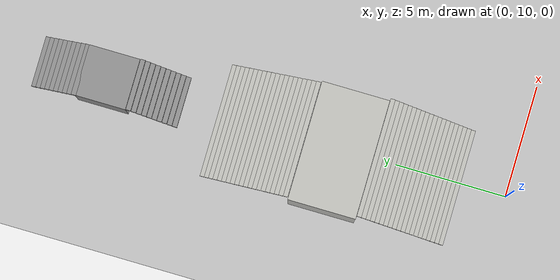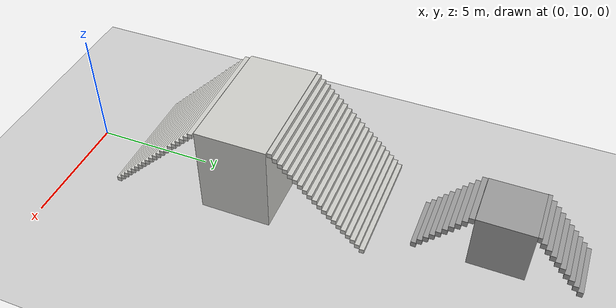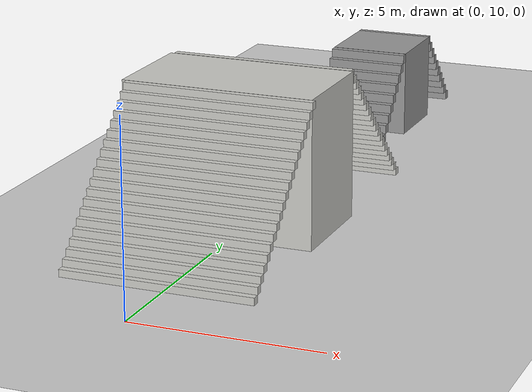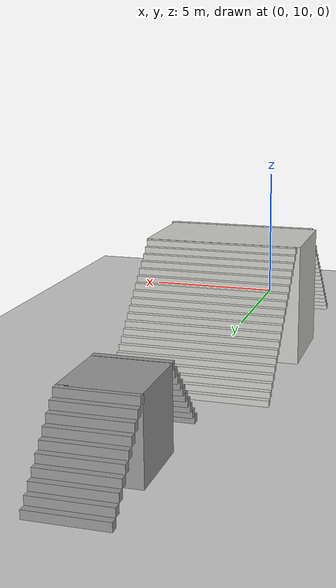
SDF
<sdf version="1.5">
 <world name="stairs_world">
  <include><uri>model://sun</uri></include>
  <include><uri>model://ground_plane</uri></include>
  <model name="stairs_20x20">
   <pose>0 19 0 0 0 0</pose>
   <link name="Stairs_2">
    <pose>0 -0.06 0 0 -0 0</pose>
    <visual name="Stairs_2_Visual_0">
     <pose>-0.322187 4.0542 0.1 0 -0 0</pose>
     <geometry><box><size>5.09 0.2 0.2</size></box></geometry>
     <material>
      <script><uri>file://media/materials/scripts/gazebo.material</uri><name>Gazebo/CeilingTiled</name></script>
      <ambient>0.996078 0.47451 0.0196078 1</ambient>
     </material>
     <meta><layer>0</layer></meta>
    </visual>
    <collision name="Stairs_2_Collision_0">
     <geometry><box><size>5.09 0.2 0.2</size></box></geometry>
     <pose>-0.322187 4.0542 0.1 0 -0 0</pose>
    </collision>
    <visual name="Stairs_2_Visual_1">
     <pose>-0.322187 3.8542 0.3 0 -0 0</pose>
     <geometry><box><size>5.09 0.2 0.2</size></box></geometry>
     <material>
      <script><uri>file://media/materials/scripts/gazebo.material</uri><name>Gazebo/CeilingTiled</name></script>
      <ambient>0.996078 0.47451 0.0196078 1</ambient>
     </material>
     <meta><layer>0</layer></meta>
    </visual>
    <collision name="Stairs_2_Collision_1">
     <geometry><box><size>5.09 0.2 0.2</size></box></geometry>
     <pose>-0.322187 3.8542 0.3 0 -0 0</pose>
    </collision>
    <visual name="Stairs_2_Visual_2">
     <pose>-0.322187 3.6542 0.5 0 -0 0</pose>
     <geometry><box><size>5.09 0.2 0.2</size></box></geometry>
     <material>
      <script><uri>file://media/materials/scripts/gazebo.material</uri><name>Gazebo/CeilingTiled</name></script>
      <ambient>0.996078 0.47451 0.0196078 1</ambient>
     </material>
     <meta><layer>0</layer></meta>
    </visual>
    <collision name="Stairs_2_Collision_2">
     <geometry><box><size>5.09 0.2 0.2</size></box></geometry>
     <pose>-0.322187 3.6542 0.5 0 -0 0</pose>
    </collision>
    <visual name="Stairs_2_Visual_3">
     <pose>-0.322187 3.4542 0.7 0 -0 0</pose>
     <geometry><box><size>5.09 0.2 0.2</size></box></geometry>
     <material>
      <script><uri>file://media/materials/scripts/gazebo.material</uri><name>Gazebo/CeilingTiled</name></script>
      <ambient>0.996078 0.47451 0.0196078 1</ambient>
     </material>
     <meta><layer>0</layer></meta>
    </visual>
    <collision name="Stairs_2_Collision_3">
     <geometry><box><size>5.09 0.2 0.2</size></box></geometry>
     <pose>-0.322187 3.4542 0.7 0 -0 0</pose>
    </collision>
    <visual name="Stairs_2_Visual_4">
     <pose>-0.322187 3.2542 0.9 0 -0 0</pose>
     <geometry><box><size>5.09 0.2 0.2</size></box></geometry>
     <material>
      <script><uri>file://media/materials/scripts/gazebo.material</uri><name>Gazebo/CeilingTiled</name></script>
      <ambient>0.996078 0.47451 0.0196078 1</ambient>
     </material>
     <meta><layer>0</layer></meta>
    </visual>
    <collision name="Stairs_2_Collision_4">
     <geometry><box><size>5.09 0.2 0.2</size></box></geometry>
     <pose>-0.322187 3.2542 0.9 0 -0 0</pose>
    </collision>
    <visual name="Stairs_2_Visual_5">
     <pose>-0.322187 3.0542 1.1 0 -0 0</pose>
     <geometry><box><size>5.09 0.2 0.2</size></box></geometry>
     <material>
      <script><uri>file://media/materials/scripts/gazebo.material</uri><name>Gazebo/CeilingTiled</name></script>
      <ambient>0.996078 0.47451 0.0196078 1</ambient>
     </material>
     <meta><layer>0</layer></meta>
    </visual>
    <collision name="Stairs_2_Collision_5">
     <geometry><box><size>5.09 0.2 0.2</size></box></geometry>
     <pose>-0.322187 3.0542 1.1 0 -0 0</pose>
    </collision>
    <visual name="Stairs_2_Visual_6">
     <pose>-0.322187 2.8542 1.3 0 -0 0</pose>
     <geometry><box><size>5.09 0.2 0.2</size></box></geometry>
     <material>
      <script><uri>file://media/materials/scripts/gazebo.material</uri><name>Gazebo/CeilingTiled</name></script>
      <ambient>0.996078 0.47451 0.0196078 1</ambient>
     </material>
     <meta><layer>0</layer></meta>
    </visual>
    <collision name="Stairs_2_Collision_6">
     <geometry><box><size>5.09 0.2 0.2</size></box></geometry>
     <pose>-0.322187 2.8542 1.3 0 -0 0</pose>
    </collision>
    <visual name="Stairs_2_Visual_7">
     <pose>-0.322187 2.6542 1.5 0 -0 0</pose>
     <geometry><box><size>5.09 0.2 0.2</size></box></geometry>
     <material>
      <script><uri>file://media/materials/scripts/gazebo.material</uri><name>Gazebo/CeilingTiled</name></script>
      <ambient>0.996078 0.47451 0.0196078 1</ambient>
     </material>
     <meta><layer>0</layer></meta>
    </visual>
    <collision name="Stairs_2_Collision_7">
     <geometry><box><size>5.09 0.2 0.2</size></box></geometry>
     <pose>-0.322187 2.6542 1.5 0 -0 0</pose>
    </collision>
    <visual name="Stairs_2_Visual_8">
     <pose>-0.322187 2.4542 1.7 0 -0 0</pose>
     <geometry><box><size>5.09 0.2 0.2</size></box></geometry>
     <material>
      <script><uri>file://media/materials/scripts/gazebo.material</uri><name>Gazebo/CeilingTiled</name></script>
      <ambient>0.996078 0.47451 0.0196078 1</ambient>
     </material>
     <meta><layer>0</layer></meta>
    </visual>
    <collision name="Stairs_2_Collision_8">
     <geometry><box><size>5.09 0.2 0.2</size></box></geometry>
     <pose>-0.322187 2.4542 1.7 0 -0 0</pose>
    </collision>
    <visual name="Stairs_2_Visual_9">
     <pose>-0.322187 2.2542 1.9 0 -0 0</pose>
     <geometry><box><size>5.09 0.2 0.2</size></box></geometry>
     <material>
      <script><uri>file://media/materials/scripts/gazebo.material</uri><name>Gazebo/CeilingTiled</name></script>
      <ambient>0.996078 0.47451 0.0196078 1</ambient>
     </material>
     <meta><layer>0</layer></meta>
    </visual>
    <collision name="Stairs_2_Collision_9">
     <geometry><box><size>5.09 0.2 0.2</size></box></geometry>
     <pose>-0.322187 2.2542 1.9 0 -0 0</pose>
    </collision>
    <visual name="Stairs_2_Visual_10">
     <pose>-0.322187 2.0542 2.1 0 -0 0</pose>
     <geometry><box><size>5.09 0.2 0.2</size></box></geometry>
     <material>
      <script><uri>file://media/materials/scripts/gazebo.material</uri><name>Gazebo/CeilingTiled</name></script>
      <ambient>0.996078 0.47451 0.0196078 1</ambient>
     </material>
     <meta><layer>0</layer></meta>
    </visual>
    <collision name="Stairs_2_Collision_10">
     <geometry><box><size>5.09 0.2 0.2</size></box></geometry>
     <pose>-0.322187 2.0542 2.1 0 -0 0</pose>
    </collision>
    <visual name="Stairs_2_Visual_11">
     <pose>-0.322187 1.8542 2.3 0 -0 0</pose>
     <geometry><box><size>5.09 0.2 0.2</size></box></geometry>
     <material>
      <script><uri>file://media/materials/scripts/gazebo.material</uri><name>Gazebo/CeilingTiled</name></script>
      <ambient>0.996078 0.47451 0.0196078 1</ambient>
     </material>
     <meta><layer>0</layer></meta>
    </visual>
    <collision name="Stairs_2_Collision_11">
     <geometry><box><size>5.09 0.2 0.2</size></box></geometry>
     <pose>-0.322187 1.8542 2.3 0 -0 0</pose>
    </collision>
    <visual name="Stairs_2_Visual_12">
     <pose>-0.322187 1.6542 2.5 0 -0 0</pose>
     <geometry><box><size>5.09 0.2 0.2</size></box></geometry>
     <material>
      <script><uri>file://media/materials/scripts/gazebo.material</uri><name>Gazebo/CeilingTiled</name></script>
      <ambient>0.996078 0.47451 0.0196078 1</ambient>
     </material>
     <meta><layer>0</layer></meta>
    </visual>
    <collision name="Stairs_2_Collision_12">
     <geometry><box><size>5.09 0.2 0.2</size></box></geometry>
     <pose>-0.322187 1.6542 2.5 0 -0 0</pose>
    </collision>
    <visual name="Stairs_2_Visual_13">
     <pose>-0.322187 1.4542 2.7 0 -0 0</pose>
     <geometry><box><size>5.09 0.2 0.2</size></box></geometry>
     <material>
      <script><uri>file://media/materials/scripts/gazebo.material</uri><name>Gazebo/CeilingTiled</name></script>
      <ambient>0.996078 0.47451 0.0196078 1</ambient>
     </material>
     <meta><layer>0</layer></meta>
    </visual>
    <collision name="Stairs_2_Collision_13">
     <geometry><box><size>5.09 0.2 0.2</size></box></geometry>
     <pose>-0.322187 1.4542 2.7 0 -0 0</pose>
    </collision>
    <visual name="Stairs_2_Visual_14">
     <pose>-0.322187 1.2542 2.9 0 -0 0</pose>
     <geometry><box><size>5.09 0.2 0.2</size></box></geometry>
     <material>
      <script><uri>file://media/materials/scripts/gazebo.material</uri><name>Gazebo/CeilingTiled</name></script>
      <ambient>0.996078 0.47451 0.0196078 1</ambient>
     </material>
     <meta><layer>0</layer></meta>
    </visual>
    <collision name="Stairs_2_Collision_14">
     <geometry><box><size>5.09 0.2 0.2</size></box></geometry>
     <pose>-0.322187 1.2542 2.9 0 -0 0</pose>
    </collision>
    <visual name="Stairs_2_Visual_15">
     <pose>-0.322187 1.0542 3.1 0 -0 0</pose>
     <geometry><box><size>5.09 0.2 0.2</size></box></geometry>
     <material>
      <script><uri>file://media/materials/scripts/gazebo.material</uri><name>Gazebo/CeilingTiled</name></script>
      <ambient>0.996078 0.47451 0.0196078 1</ambient>
     </material>
     <meta><layer>0</layer></meta>
    </visual>
    <collision name="Stairs_2_Collision_15">
     <geometry><box><size>5.09 0.2 0.2</size></box></geometry>
     <pose>-0.322187 1.0542 3.1 0 -0 0</pose>
    </collision>
    <visual name="Stairs_2_Visual_16">
     <pose>-0.322187 0.854205 3.3 0 -0 0</pose>
     <geometry><box><size>5.09 0.2 0.2</size></box></geometry>
     <material>
      <script><uri>file://media/materials/scripts/gazebo.material</uri><name>Gazebo/CeilingTiled</name></script>
      <ambient>0.996078 0.47451 0.0196078 1</ambient>
     </material>
     <meta><layer>0</layer></meta>
    </visual>
    <collision name="Stairs_2_Collision_16">
     <geometry><box><size>5.09 0.2 0.2</size></box></geometry>
     <pose>-0.322187 0.854205 3.3 0 -0 0</pose>
    </collision>
    <visual name="Stairs_2_Visual_17">
     <pose>-0.322187 0.654204 3.5 0 -0 0</pose>
     <geometry><box><size>5.09 0.2 0.2</size></box></geometry>
     <material>
      <script><uri>file://media/materials/scripts/gazebo.material</uri><name>Gazebo/CeilingTiled</name></script>
      <ambient>0.996078 0.47451 0.0196078 1</ambient>
     </material>
     <meta><layer>0</layer></meta>
    </visual>
    <collision name="Stairs_2_Collision_17">
     <geometry><box><size>5.09 0.2 0.2</size></box></geometry>
     <pose>-0.322187 0.654204 3.5 0 -0 0</pose>
    </collision>
    <visual name="Stairs_2_Visual_18">
     <pose>-0.322187 0.454204 3.7 0 -0 0</pose>
     <geometry><box><size>5.09 0.2 0.2</size></box></geometry>
     <material>
      <script><uri>file://media/materials/scripts/gazebo.material</uri><name>Gazebo/CeilingTiled</name></script>
      <ambient>0.996078 0.47451 0.0196078 1</ambient>
     </material>
     <meta><layer>0</layer></meta>
    </visual>
    <collision name="Stairs_2_Collision_18">
     <geometry><box><size>5.09 0.2 0.2</size></box></geometry>
     <pose>-0.322187 0.454204 3.7 0 -0 0</pose>
    </collision>
    <visual name="Stairs_2_Visual_19">
     <pose>-0.322187 0.254204 3.9 0 -0 0</pose>
     <geometry><box><size>5.09 0.2 0.2</size></box></geometry>
     <material>
      <script><uri>file://media/materials/scripts/gazebo.material</uri><name>Gazebo/CeilingTiled</name></script>
      <ambient>0.996078 0.47451 0.0196078 1</ambient>
     </material>
     <meta><layer>0</layer></meta>
    </visual>
    <collision name="Stairs_2_Collision_19">
     <geometry><box><size>5.09 0.2 0.2</size></box></geometry>
     <pose>-0.322187 0.254204 3.9 0 -0 0</pose>
    </collision>
   </link>
   <link name="Stairs_4">
    <pose>0 0.03 0 0 -0 0</pose>
    <visual name="Stairs_4_Visual_0">
     <pose>-0.216029 -6.875 0.1 0 -0 -3.14159</pose>
     <geometry><box><size>5.21 0.2 0.2</size></box></geometry>
     <material>
      <script><uri>file://media/materials/scripts/gazebo.material</uri><name>Gazebo/CeilingTiled</name></script>
      <ambient>0.996078 0.47451 0.0196078 1</ambient>
     </material>
     <meta><layer>0</layer></meta>
    </visual>
    <collision name="Stairs_4_Collision_0">
     <geometry><box><size>5.21 0.2 0.2</size></box></geometry>
     <pose>-0.216029 -6.875 0.1 0 -0 -3.14159</pose>
    </collision>
    <visual name="Stairs_4_Visual_1">
     <pose>-0.216029 -6.675 0.3 0 -0 -3.14159</pose>
     <geometry><box><size>5.21 0.2 0.2</size></box></geometry>
     <material>
      <script><uri>file://media/materials/scripts/gazebo.material</uri><name>Gazebo/CeilingTiled</name></script>
      <ambient>0.996078 0.47451 0.0196078 1</ambient>
     </material>
     <meta><layer>0</layer></meta>
    </visual>
    <collision name="Stairs_4_Collision_1">
     <geometry><box><size>5.21 0.2 0.2</size></box></geometry>
     <pose>-0.216029 -6.675 0.3 0 -0 -3.14159</pose>
    </collision>
    <visual name="Stairs_4_Visual_2">
     <pose>-0.216029 -6.475 0.5 0 -0 -3.14159</pose>
     <geometry><box><size>5.21 0.2 0.2</size></box></geometry>
     <material>
      <script><uri>file://media/materials/scripts/gazebo.material</uri><name>Gazebo/CeilingTiled</name></script>
      <ambient>0.996078 0.47451 0.0196078 1</ambient>
     </material>
     <meta><layer>0</layer></meta>
    </visual>
    <collision name="Stairs_4_Collision_2">
     <geometry><box><size>5.21 0.2 0.2</size></box></geometry>
     <pose>-0.216029 -6.475 0.5 0 -0 -3.14159</pose>
    </collision>
    <visual name="Stairs_4_Visual_3">
     <pose>-0.216029 -6.275 0.7 0 -0 -3.14159</pose>
     <geometry><box><size>5.21 0.2 0.2</size></box></geometry>
     <material>
      <script><uri>file://media/materials/scripts/gazebo.material</uri><name>Gazebo/CeilingTiled</name></script>
      <ambient>0.996078 0.47451 0.0196078 1</ambient>
     </material>
     <meta><layer>0</layer></meta>
    </visual>
    <collision name="Stairs_4_Collision_3">
     <geometry><box><size>5.21 0.2 0.2</size></box></geometry>
     <pose>-0.216029 -6.275 0.7 0 -0 -3.14159</pose>
    </collision>
    <visual name="Stairs_4_Visual_4">
     <pose>-0.216029 -6.075 0.9 0 -0 -3.14159</pose>
     <geometry><box><size>5.21 0.2 0.2</size></box></geometry>
     <material>
      <script><uri>file://media/materials/scripts/gazebo.material</uri><name>Gazebo/CeilingTiled</name></script>
      <ambient>0.996078 0.47451 0.0196078 1</ambient>
     </material>
     <meta><layer>0</layer></meta>
    </visual>
    <collision name="Stairs_4_Collision_4">
     <geometry><box><size>5.21 0.2 0.2</size></box></geometry>
     <pose>-0.216029 -6.075 0.9 0 -0 -3.14159</pose>
    </collision>
    <visual name="Stairs_4_Visual_5">
     <pose>-0.216029 -5.875 1.1 0 -0 -3.14159</pose>
     <geometry><box><size>5.21 0.2 0.2</size></box></geometry>
     <material>
      <script><uri>file://media/materials/scripts/gazebo.material</uri><name>Gazebo/CeilingTiled</name></script>
      <ambient>0.996078 0.47451 0.0196078 1</ambient>
     </material>
     <meta><layer>0</layer></meta>
    </visual>
    <collision name="Stairs_4_Collision_5">
     <geometry><box><size>5.21 0.2 0.2</size></box></geometry>
     <pose>-0.216029 -5.875 1.1 0 -0 -3.14159</pose>
    </collision>
    <visual name="Stairs_4_Visual_6">
     <pose>-0.216029 -5.675 1.3 0 -0 -3.14159</pose>
     <geometry><box><size>5.21 0.2 0.2</size></box></geometry>
     <material>
      <script><uri>file://media/materials/scripts/gazebo.material</uri><name>Gazebo/CeilingTiled</name></script>
      <ambient>0.996078 0.47451 0.0196078 1</ambient>
     </material>
     <meta><layer>0</layer></meta>
    </visual>
    <collision name="Stairs_4_Collision_6">
     <geometry><box><size>5.21 0.2 0.2</size></box></geometry>
     <pose>-0.216029 -5.675 1.3 0 -0 -3.14159</pose>
    </collision>
    <visual name="Stairs_4_Visual_7">
     <pose>-0.216029 -5.475 1.5 0 -0 -3.14159</pose>
     <geometry><box><size>5.21 0.2 0.2</size></box></geometry>
     <material>
      <script><uri>file://media/materials/scripts/gazebo.material</uri><name>Gazebo/CeilingTiled</name></script>
      <ambient>0.996078 0.47451 0.0196078 1</ambient>
     </material>
     <meta><layer>0</layer></meta>
    </visual>
    <collision name="Stairs_4_Collision_7">
     <geometry><box><size>5.21 0.2 0.2</size></box></geometry>
     <pose>-0.216029 -5.475 1.5 0 -0 -3.14159</pose>
    </collision>
    <visual name="Stairs_4_Visual_8">
     <pose>-0.216029 -5.275 1.7 0 -0 -3.14159</pose>
     <geometry><box><size>5.21 0.2 0.2</size></box></geometry>
     <material>
      <script><uri>file://media/materials/scripts/gazebo.material</uri><name>Gazebo/CeilingTiled</name></script>
      <ambient>0.996078 0.47451 0.0196078 1</ambient>
     </material>
     <meta><layer>0</layer></meta>
    </visual>
    <collision name="Stairs_4_Collision_8">
     <geometry><box><size>5.21 0.2 0.2</size></box></geometry>
     <pose>-0.216029 -5.275 1.7 0 -0 -3.14159</pose>
    </collision>
    <visual name="Stairs_4_Visual_9">
     <pose>-0.216029 -5.075 1.9 0 -0 -3.14159</pose>
     <geometry><box><size>5.21 0.2 0.2</size></box></geometry>
     <material>
      <script><uri>file://media/materials/scripts/gazebo.material</uri><name>Gazebo/CeilingTiled</name></script>
      <ambient>0.996078 0.47451 0.0196078 1</ambient>
     </material>
     <meta><layer>0</layer></meta>
    </visual>
    <collision name="Stairs_4_Collision_9">
     <geometry><box><size>5.21 0.2 0.2</size></box></geometry>
     <pose>-0.216029 -5.075 1.9 0 -0 -3.14159</pose>
    </collision>
    <visual name="Stairs_4_Visual_10">
     <pose>-0.216029 -4.875 2.1 0 -0 -3.14159</pose>
     <geometry><box><size>5.21 0.2 0.2</size></box></geometry>
     <material>
      <script><uri>file://media/materials/scripts/gazebo.material</uri><name>Gazebo/CeilingTiled</name></script>
      <ambient>0.996078 0.47451 0.0196078 1</ambient>
     </material>
     <meta><layer>0</layer></meta>
    </visual>
    <collision name="Stairs_4_Collision_10">
     <geometry><box><size>5.21 0.2 0.2</size></box></geometry>
     <pose>-0.216029 -4.875 2.1 0 -0 -3.14159</pose>
    </collision>
    <visual name="Stairs_4_Visual_11">
     <pose>-0.216029 -4.675 2.3 0 -0 -3.14159</pose>
     <geometry><box><size>5.21 0.2 0.2</size></box></geometry>
     <material>
      <script><uri>file://media/materials/scripts/gazebo.material</uri><name>Gazebo/CeilingTiled</name></script>
      <ambient>0.996078 0.47451 0.0196078 1</ambient>
     </material>
     <meta><layer>0</layer></meta>
    </visual>
    <collision name="Stairs_4_Collision_11">
     <geometry><box><size>5.21 0.2 0.2</size></box></geometry>
     <pose>-0.216029 -4.675 2.3 0 -0 -3.14159</pose>
    </collision>
    <visual name="Stairs_4_Visual_12">
     <pose>-0.216029 -4.475 2.5 0 -0 -3.14159</pose>
     <geometry><box><size>5.21 0.2 0.2</size></box></geometry>
     <material>
      <script><uri>file://media/materials/scripts/gazebo.material</uri><name>Gazebo/CeilingTiled</name></script>
      <ambient>0.996078 0.47451 0.0196078 1</ambient>
     </material>
     <meta><layer>0</layer></meta>
    </visual>
    <collision name="Stairs_4_Collision_12">
     <geometry><box><size>5.21 0.2 0.2</size></box></geometry>
     <pose>-0.216029 -4.475 2.5 0 -0 -3.14159</pose>
    </collision>
    <visual name="Stairs_4_Visual_13">
     <pose>-0.216029 -4.275 2.7 0 -0 -3.14159</pose>
     <geometry><box><size>5.21 0.2 0.2</size></box></geometry>
     <material>
      <script><uri>file://media/materials/scripts/gazebo.material</uri><name>Gazebo/CeilingTiled</name></script>
      <ambient>0.996078 0.47451 0.0196078 1</ambient>
     </material>
     <meta><layer>0</layer></meta>
    </visual>
    <collision name="Stairs_4_Collision_13">
     <geometry><box><size>5.21 0.2 0.2</size></box></geometry>
     <pose>-0.216029 -4.275 2.7 0 -0 -3.14159</pose>
    </collision>
    <visual name="Stairs_4_Visual_14">
     <pose>-0.216029 -4.075 2.9 0 -0 -3.14159</pose>
     <geometry><box><size>5.21 0.2 0.2</size></box></geometry>
     <material>
      <script><uri>file://media/materials/scripts/gazebo.material</uri><name>Gazebo/CeilingTiled</name></script>
      <ambient>0.996078 0.47451 0.0196078 1</ambient>
     </material>
     <meta><layer>0</layer></meta>
    </visual>
    <collision name="Stairs_4_Collision_14">
     <geometry><box><size>5.21 0.2 0.2</size></box></geometry>
     <pose>-0.216029 -4.075 2.9 0 -0 -3.14159</pose>
    </collision>
    <visual name="Stairs_4_Visual_15">
     <pose>-0.216029 -3.875 3.1 0 -0 -3.14159</pose>
     <geometry><box><size>5.21 0.2 0.2</size></box></geometry>
     <material>
      <script><uri>file://media/materials/scripts/gazebo.material</uri><name>Gazebo/CeilingTiled</name></script>
      <ambient>0.996078 0.47451 0.0196078 1</ambient>
     </material>
     <meta><layer>0</layer></meta>
    </visual>
    <collision name="Stairs_4_Collision_15">
     <geometry><box><size>5.21 0.2 0.2</size></box></geometry>
     <pose>-0.216029 -3.875 3.1 0 -0 -3.14159</pose>
    </collision>
    <visual name="Stairs_4_Visual_16">
     <pose>-0.216029 -3.675 3.3 0 -0 -3.14159</pose>
     <geometry><box><size>5.21 0.2 0.2</size></box></geometry>
     <material>
      <script><uri>file://media/materials/scripts/gazebo.material</uri><name>Gazebo/CeilingTiled</name></script>
      <ambient>0.996078 0.47451 0.0196078 1</ambient>
     </material>
     <meta><layer>0</layer></meta>
    </visual>
    <collision name="Stairs_4_Collision_16">
     <geometry><box><size>5.21 0.2 0.2</size></box></geometry>
     <pose>-0.216029 -3.675 3.3 0 -0 -3.14159</pose>
    </collision>
    <visual name="Stairs_4_Visual_17">
     <pose>-0.216029 -3.475 3.5 0 -0 -3.14159</pose>
     <geometry><box><size>5.21 0.2 0.2</size></box></geometry>
     <material>
      <script><uri>file://media/materials/scripts/gazebo.material</uri><name>Gazebo/CeilingTiled</name></script>
      <ambient>0.996078 0.47451 0.0196078 1</ambient>
     </material>
     <meta><layer>0</layer></meta>
    </visual>
    <collision name="Stairs_4_Collision_17">
     <geometry><box><size>5.21 0.2 0.2</size></box></geometry>
     <pose>-0.216029 -3.475 3.5 0 -0 -3.14159</pose>
    </collision>
    <visual name="Stairs_4_Visual_18">
     <pose>-0.216029 -3.275 3.7 0 -0 -3.14159</pose>
     <geometry><box><size>5.21 0.2 0.2</size></box></geometry>
     <material>
      <script><uri>file://media/materials/scripts/gazebo.material</uri><name>Gazebo/CeilingTiled</name></script>
      <ambient>0.996078 0.47451 0.0196078 1</ambient>
     </material>
     <meta><layer>0</layer></meta>
    </visual>
    <collision name="Stairs_4_Collision_18">
     <geometry><box><size>5.21 0.2 0.2</size></box></geometry>
     <pose>-0.216029 -3.275 3.7 0 -0 -3.14159</pose>
    </collision>
    <visual name="Stairs_4_Visual_19">
     <pose>-0.216029 -3.075 3.9 0 -0 -3.14159</pose>
     <geometry><box><size>5.21 0.2 0.2</size></box></geometry>
     <material>
      <script><uri>file://media/materials/scripts/gazebo.material</uri><name>Gazebo/CeilingTiled</name></script>
      <ambient>0.996078 0.47451 0.0196078 1</ambient>
     </material>
     <meta><layer>0</layer></meta>
    </visual>
    <collision name="Stairs_4_Collision_19">
     <geometry><box><size>5.21 0.2 0.2</size></box></geometry>
     <pose>-0.216029 -3.075 3.9 0 -0 -3.14159</pose>
    </collision>
   </link>
   <link name="Wall_0">
    <collision name="Wall_0_Collision">
     <geometry><box><size>5.25 3 0.1</size></box></geometry>
     <pose>0 0 2 0 -0 0</pose>
    </collision>
    <visual name="Wall_0_Visual">
     <pose>0 0 2 0 -0 0</pose>
     <geometry><box><size>5.25 3 4</size></box></geometry>
     <material>
      <script><uri>file://media/materials/scripts/gazebo.material</uri><name>Gazebo/CeilingTiled</name></script>
      <ambient>0.760784 0.662745 0.627451 1</ambient>
     </material>
     <meta><layer>0</layer></meta>
    </visual>
    <pose>-0.337604 -1.43021 0 0 -0 0</pose>
   </link>
   <static>1</static>
  </model>
  <model name="stairs_25x22">
   <pose>0 30 0 0 0 0</pose>
   <link name="Stairs_1">
    <visual name="Stairs_1_Visual_0">
     <pose>-0.0125 1.175 0.125 0 -0 0</pose>
     <geometry><box><size>2.27 0.22 0.25</size></box></geometry>
     <material>
      <script><uri>file://media/materials/scripts/gazebo.material</uri><name>Gazebo/Grey</name></script>
      <ambient>1 1 1 1</ambient>
     </material>
     <meta><layer>0</layer></meta>
    </visual>
    <collision name="Stairs_1_Collision_0">
     <geometry><box><size>2.27 0.22 0.25</size></box></geometry>
     <pose>-0.0125 1.175 0.125 0 -0 0</pose>
    </collision>
    <visual name="Stairs_1_Visual_1">
     <pose>-0.0125 0.955 0.375 0 -0 0</pose>
     <geometry><box><size>2.27 0.22 0.25</size></box></geometry>
     <material>
      <script><uri>file://media/materials/scripts/gazebo.material</uri><name>Gazebo/Grey</name></script>
      <ambient>1 1 1 1</ambient>
     </material>
     <meta><layer>0</layer></meta>
    </visual>
    <collision name="Stairs_1_Collision_1">
     <geometry><box><size>2.27 0.22 0.25</size></box></geometry>
     <pose>-0.0125 0.955 0.375 0 -0 0</pose>
    </collision>
    <visual name="Stairs_1_Visual_2">
     <pose>-0.0125 0.735 0.625 0 -0 0</pose>
     <geometry><box><size>2.27 0.22 0.25</size></box></geometry>
     <material>
      <script><uri>file://media/materials/scripts/gazebo.material</uri><name>Gazebo/Grey</name></script>
      <ambient>1 1 1 1</ambient>
     </material>
     <meta><layer>0</layer></meta>
    </visual>
    <collision name="Stairs_1_Collision_2">
     <geometry><box><size>2.27 0.22 0.25</size></box></geometry>
     <pose>-0.0125 0.735 0.625 0 -0 0</pose>
    </collision>
    <visual name="Stairs_1_Visual_3">
     <pose>-0.0125 0.515 0.875 0 -0 0</pose>
     <geometry><box><size>2.27 0.22 0.25</size></box></geometry>
     <material>
      <script><uri>file://media/materials/scripts/gazebo.material</uri><name>Gazebo/Grey</name></script>
      <ambient>1 1 1 1</ambient>
     </material>
     <meta><layer>0</layer></meta>
    </visual>
    <collision name="Stairs_1_Collision_3">
     <geometry><box><size>2.27 0.22 0.25</size></box></geometry>
     <pose>-0.0125 0.515 0.875 0 -0 0</pose>
    </collision>
    <visual name="Stairs_1_Visual_4">
     <pose>-0.0125 0.295 1.125 0 -0 0</pose>
     <geometry><box><size>2.27 0.22 0.25</size></box></geometry>
     <material>
      <script><uri>file://media/materials/scripts/gazebo.material</uri><name>Gazebo/Grey</name></script>
      <ambient>1 1 1 1</ambient>
     </material>
     <meta><layer>0</layer></meta>
    </visual>
    <collision name="Stairs_1_Collision_4">
     <geometry><box><size>2.27 0.22 0.25</size></box></geometry>
     <pose>-0.0125 0.295 1.125 0 -0 0</pose>
    </collision>
    <visual name="Stairs_1_Visual_5">
     <pose>-0.0125 0.075 1.375 0 -0 0</pose>
     <geometry><box><size>2.27 0.22 0.25</size></box></geometry>
     <material>
      <script><uri>file://media/materials/scripts/gazebo.material</uri><name>Gazebo/Grey</name></script>
      <ambient>1 1 1 1</ambient>
     </material>
     <meta><layer>0</layer></meta>
    </visual>
    <collision name="Stairs_1_Collision_5">
     <geometry><box><size>2.27 0.22 0.25</size></box></geometry>
     <pose>-0.0125 0.075 1.375 0 -0 0</pose>
    </collision>
    <visual name="Stairs_1_Visual_6">
     <pose>-0.0125 -0.145 1.625 0 -0 0</pose>
     <geometry><box><size>2.27 0.22 0.25</size></box></geometry>
     <material>
      <script><uri>file://media/materials/scripts/gazebo.material</uri><name>Gazebo/Grey</name></script>
      <ambient>1 1 1 1</ambient>
     </material>
     <meta><layer>0</layer></meta>
    </visual>
    <collision name="Stairs_1_Collision_6">
     <geometry><box><size>2.27 0.22 0.25</size></box></geometry>
     <pose>-0.0125 -0.145 1.625 0 -0 0</pose>
    </collision>
    <visual name="Stairs_1_Visual_7">
     <pose>-0.0125 -0.365 1.875 0 -0 0</pose>
     <geometry><box><size>2.27 0.22 0.25</size></box></geometry>
     <material>
      <script><uri>file://media/materials/scripts/gazebo.material</uri><name>Gazebo/Grey</name></script>
      <ambient>1 1 1 1</ambient>
     </material>
     <meta><layer>0</layer></meta>
    </visual>
    <collision name="Stairs_1_Collision_7">
     <geometry><box><size>2.27 0.22 0.25</size></box></geometry>
     <pose>-0.0125 -0.365 1.875 0 -0 0</pose>
    </collision>
    <visual name="Stairs_1_Visual_8">
     <pose>-0.0125 -0.585 2.125 0 -0 0</pose>
     <geometry><box><size>2.27 0.22 0.25</size></box></geometry>
     <material>
      <script><uri>file://media/materials/scripts/gazebo.material</uri><name>Gazebo/Grey</name></script>
      <ambient>1 1 1 1</ambient>
     </material>
     <meta><layer>0</layer></meta>
    </visual>
    <collision name="Stairs_1_Collision_8">
     <geometry><box><size>2.27 0.22 0.25</size></box></geometry>
     <pose>-0.0125 -0.585 2.125 0 -0 0</pose>
    </collision>
    <visual name="Stairs_1_Visual_9">
     <pose>-0.0125 -0.805 2.375 0 -0 0</pose>
     <geometry><box><size>2.27 0.22 0.25</size></box></geometry>
     <material>
      <script><uri>file://media/materials/scripts/gazebo.material</uri><name>Gazebo/Grey</name></script>
      <ambient>1 1 1 1</ambient>
     </material>
     <meta><layer>0</layer></meta>
    </visual>
    <collision name="Stairs_1_Collision_9">
     <geometry><box><size>2.27 0.22 0.25</size></box></geometry>
     <pose>-0.0125 -0.805 2.375 0 -0 0</pose>
    </collision>
   </link>
   <link name="Stairs_3">
    <visual name="Stairs_3_Visual_0">
     <pose>0.0125 -5.235 0.125 0 -0 -3.14159</pose>
     <geometry><box><size>2.27 0.22 0.25</size></box></geometry>
     <material>
      <script><uri>file://media/materials/scripts/gazebo.material</uri><name>Gazebo/Grey</name></script>
      <ambient>1 1 1 1</ambient>
     </material>
     <meta><layer>0</layer></meta>
    </visual>
    <collision name="Stairs_3_Collision_0">
     <geometry><box><size>2.27 0.22 0.25</size></box></geometry>
     <pose>0.0125 -5.235 0.125 0 -0 -3.14159</pose>
    </collision>
    <visual name="Stairs_3_Visual_1">
     <pose>0.0125 -5.015 0.375 0 -0 -3.14159</pose>
     <geometry><box><size>2.27 0.22 0.25</size></box></geometry>
     <material>
      <script><uri>file://media/materials/scripts/gazebo.material</uri><name>Gazebo/Grey</name></script>
      <ambient>1 1 1 1</ambient>
     </material>
     <meta><layer>0</layer></meta>
    </visual>
    <collision name="Stairs_3_Collision_1">
     <geometry><box><size>2.27 0.22 0.25</size></box></geometry>
     <pose>0.0125 -5.015 0.375 0 -0 -3.14159</pose>
    </collision>
    <visual name="Stairs_3_Visual_2">
     <pose>0.0125 -4.795 0.625 0 -0 -3.14159</pose>
     <geometry><box><size>2.27 0.22 0.25</size></box></geometry>
     <material>
      <script><uri>file://media/materials/scripts/gazebo.material</uri><name>Gazebo/Grey</name></script>
      <ambient>1 1 1 1</ambient>
     </material>
     <meta><layer>0</layer></meta>
    </visual>
    <collision name="Stairs_3_Collision_2">
     <geometry><box><size>2.27 0.22 0.25</size></box></geometry>
     <pose>0.0125 -4.795 0.625 0 -0 -3.14159</pose>
    </collision>
    <visual name="Stairs_3_Visual_3">
     <pose>0.0125 -4.575 0.875 0 -0 -3.14159</pose>
     <geometry><box><size>2.27 0.22 0.25</size></box></geometry>
     <material>
      <script><uri>file://media/materials/scripts/gazebo.material</uri><name>Gazebo/Grey</name></script>
      <ambient>1 1 1 1</ambient>
     </material>
     <meta><layer>0</layer></meta>
    </visual>
    <collision name="Stairs_3_Collision_3">
     <geometry><box><size>2.27 0.22 0.25</size></box></geometry>
     <pose>0.0125 -4.575 0.875 0 -0 -3.14159</pose>
    </collision>
    <visual name="Stairs_3_Visual_4">
     <pose>0.0125 -4.355 1.125 0 -0 -3.14159</pose>
     <geometry><box><size>2.27 0.22 0.25</size></box></geometry>
     <material>
      <script><uri>file://media/materials/scripts/gazebo.material</uri><name>Gazebo/Grey</name></script>
      <ambient>1 1 1 1</ambient>
     </material>
     <meta><layer>0</layer></meta>
    </visual>
    <collision name="Stairs_3_Collision_4">
     <geometry><box><size>2.27 0.22 0.25</size></box></geometry>
     <pose>0.0125 -4.355 1.125 0 -0 -3.14159</pose>
    </collision>
    <visual name="Stairs_3_Visual_5">
     <pose>0.0125 -4.135 1.375 0 -0 -3.14159</pose>
     <geometry><box><size>2.27 0.22 0.25</size></box></geometry>
     <material>
      <script><uri>file://media/materials/scripts/gazebo.material</uri><name>Gazebo/Grey</name></script>
      <ambient>1 1 1 1</ambient>
     </material>
     <meta><layer>0</layer></meta>
    </visual>
    <collision name="Stairs_3_Collision_5">
     <geometry><box><size>2.27 0.22 0.25</size></box></geometry>
     <pose>0.0125 -4.135 1.375 0 -0 -3.14159</pose>
    </collision>
    <visual name="Stairs_3_Visual_6">
     <pose>0.0125 -3.915 1.625 0 -0 -3.14159</pose>
     <geometry><box><size>2.27 0.22 0.25</size></box></geometry>
     <material>
      <script><uri>file://media/materials/scripts/gazebo.material</uri><name>Gazebo/Grey</name></script>
      <ambient>1 1 1 1</ambient>
     </material>
     <meta><layer>0</layer></meta>
    </visual>
    <collision name="Stairs_3_Collision_6">
     <geometry><box><size>2.27 0.22 0.25</size></box></geometry>
     <pose>0.0125 -3.915 1.625 0 -0 -3.14159</pose>
    </collision>
    <visual name="Stairs_3_Visual_7">
     <pose>0.0125 -3.695 1.875 0 -0 -3.14159</pose>
     <geometry><box><size>2.27 0.22 0.25</size></box></geometry>
     <material>
      <script><uri>file://media/materials/scripts/gazebo.material</uri><name>Gazebo/Grey</name></script>
      <ambient>1 1 1 1</ambient>
     </material>
     <meta><layer>0</layer></meta>
    </visual>
    <collision name="Stairs_3_Collision_7">
     <geometry><box><size>2.27 0.22 0.25</size></box></geometry>
     <pose>0.0125 -3.695 1.875 0 -0 -3.14159</pose>
    </collision>
    <visual name="Stairs_3_Visual_8">
     <pose>0.0125 -3.475 2.125 0 -0 -3.14159</pose>
     <geometry><box><size>2.27 0.22 0.25</size></box></geometry>
     <material>
      <script><uri>file://media/materials/scripts/gazebo.material</uri><name>Gazebo/Grey</name></script>
      <ambient>1 1 1 1</ambient>
     </material>
     <meta><layer>0</layer></meta>
    </visual>
    <collision name="Stairs_3_Collision_8">
     <geometry><box><size>2.27 0.22 0.25</size></box></geometry>
     <pose>0.0125 -3.475 2.125 0 -0 -3.14159</pose>
    </collision>
    <visual name="Stairs_3_Visual_9">
     <pose>0.0125 -3.255 2.375 0 -0 -3.14159</pose>
     <geometry><box><size>2.27 0.22 0.25</size></box></geometry>
     <material>
      <script><uri>file://media/materials/scripts/gazebo.material</uri><name>Gazebo/Grey</name></script>
      <ambient>1 1 1 1</ambient>
     </material>
     <meta><layer>0</layer></meta>
    </visual>
    <collision name="Stairs_3_Collision_9">
     <geometry><box><size>2.27 0.22 0.25</size></box></geometry>
     <pose>0.0125 -3.255 2.375 0 -0 -3.14159</pose>
    </collision>
   </link>
   <link name="Wall_1">
    <collision name="Wall_1_Collision">
     <geometry><box><size>2.28 2.27 2.5</size></box></geometry>
     <pose>0 0 1.25 0 -0 0</pose>
    </collision>
    <visual name="Wall_1_Visual">
     <pose>0 0 1.25 0 -0 0</pose>
     <geometry><box><size>2.28 2.27 2.5</size></box></geometry>
     <material>
      <script><uri>file://media/materials/scripts/gazebo.material</uri><name>Gazebo/Grey</name></script>
      <ambient>1 1 1 1</ambient>
     </material>
     <meta><layer>0</layer></meta>
    </visual>
    <pose>-0.0025 -1.99 0 0 -0 -1.5708</pose>
   </link>
   <static>1</static>
  </model>
 </world>
</sdf>
